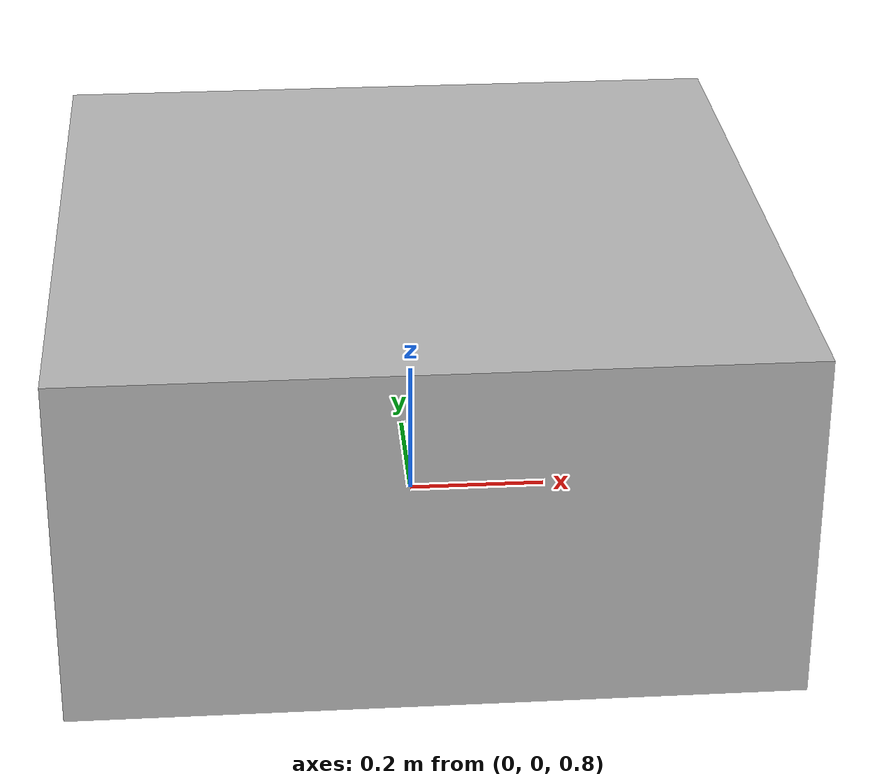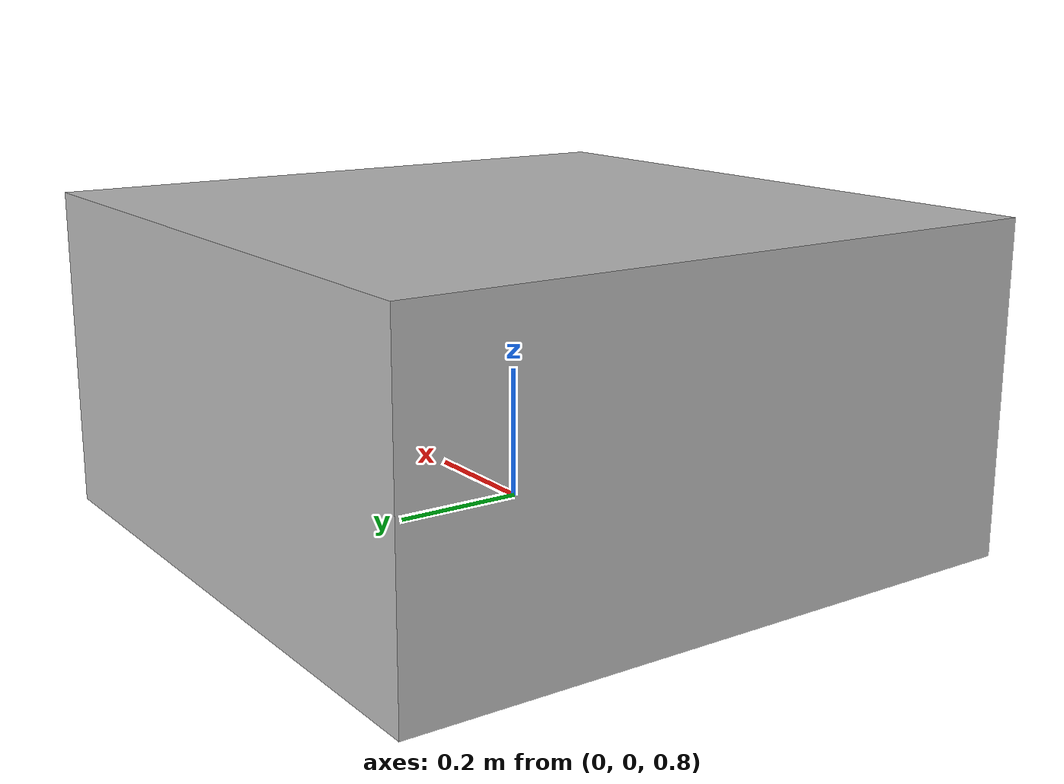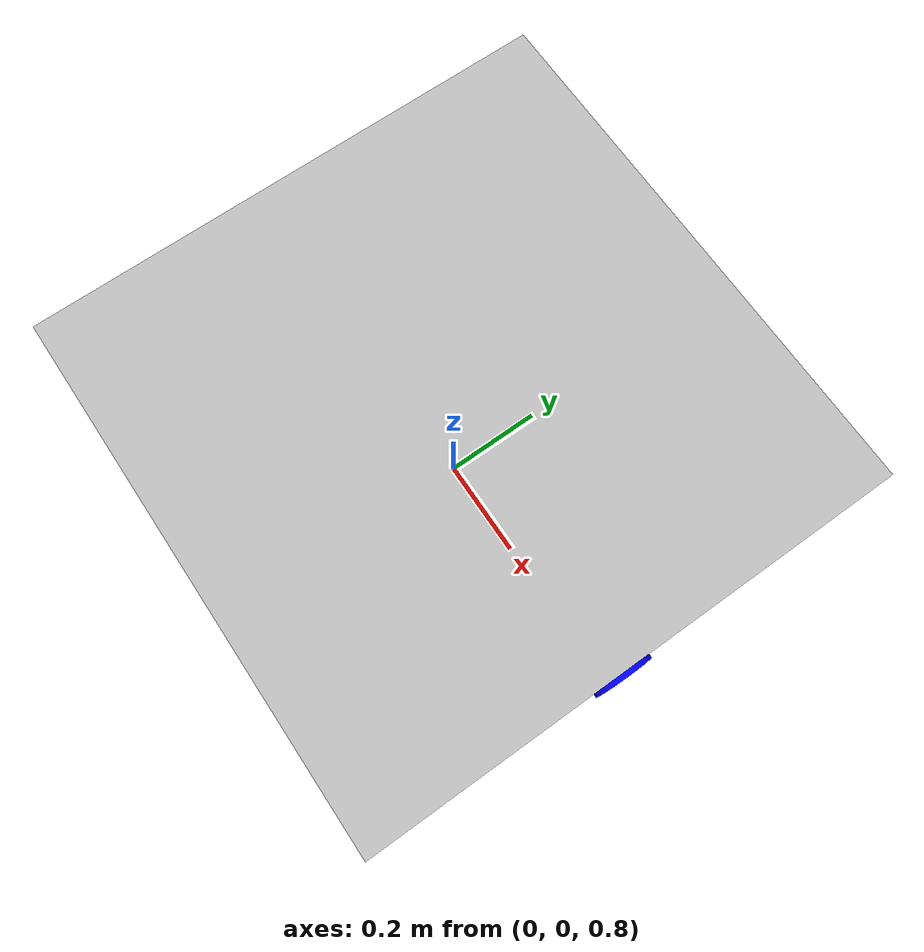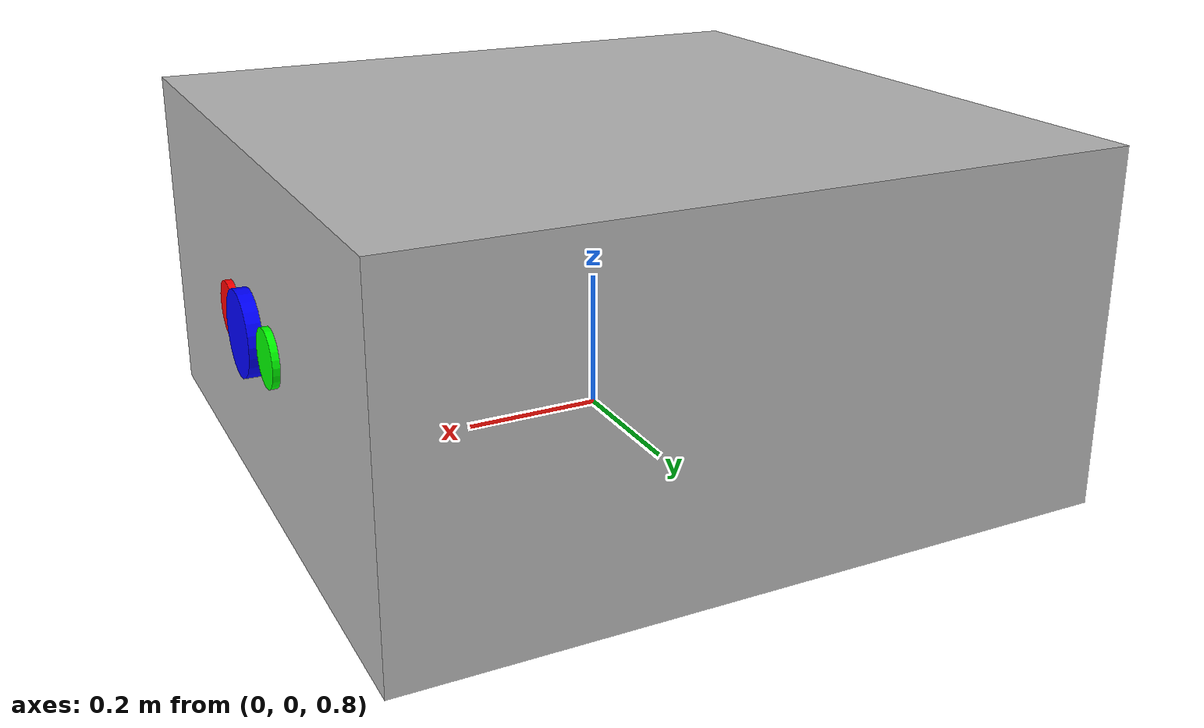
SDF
<?xml version="1.0" ?>
<sdf version="1.6">
  <model name="quadcopter_with_camera">

    <!-- World link -->
    <link name="world"/>

    <!-- Define the box as the main link -->
    <link name="box_link">
      <pose>0 0 1 0 0 0</pose> <!-- Adjust the pose to position the box -->

      <visual name="box_visual">
        <geometry>
          <box>
            <size>1 1 0.5</size> <!-- Define the size of the box -->
          </box>
        </geometry>
      </visual>
      <collision name="box_collision">
        <geometry>
          <box>
            <size>1 1 1</size>
          </box>
        </geometry>
      </collision>

      <!-- Attach the camera sensor to the box -->
      <sensor name="camera" type="camera">
        <pose>0.5 0 0 0 0 0</pose> <!-- Position the camera -->
        <camera>
          <horizontal_fov>1.047</horizontal_fov>
          <image>
            <width>640</width>
            <height>480</height>
            <format>R8G8B8</format>
          </image>
          <clip>
            <near>0.1</near>
            <far>100</far>
          </clip>
        </camera>
        <always_on>1</always_on>
        <update_rate>30</update_rate>
        <visualize>true</visualize>

        <!-- ROS2 Camera Plugin to publish the camera feed -->
        <plugin name="camera_plugin" filename="libgazebo_ros_camera.so">
          <ros>
            <namespace>/quadcopter</namespace>
            <remapping>image_raw:=/camera/image_raw</remapping>
          </ros>
          <camera_name>camera</camera_name>
          <frame_name>box_link</frame_name> <!-- Attach the camera frame to the box link -->
        </plugin>
      </sensor>

      <!-- Add visual for the camera -->
      <visual name="camera_visual">
        <pose>0.5 0 0 0 1.5708 0</pose> <!-- Match camera pose -->
        <geometry>
          <cylinder>
            <radius>0.06</radius>
            <length>0.04</length>
          </cylinder>
        </geometry>
        <material>
          <ambient>0 0 1 1</ambient> <!-- Blue color -->
          <diffuse>0 0 1 1</diffuse>
        </material>
      </visual>

      <!-- Right distance sensor -->
      <sensor name="right_distance_sensor" type="ray">
        <pose>0.5 0.1 0 0 0 0</pose>
        <ray>
          <scan>
            <horizontal>
              <samples>1</samples>
              <resolution>1</resolution>
              <min_angle>0</min_angle>
              <max_angle>0</max_angle>
            </horizontal>
          </scan>
          <range>
            <min>0.1</min>
            <max>10.0</max>
          </range>
        </ray>
        <always_on>1</always_on>
        <update_rate>10</update_rate>
        <plugin name="right_distance_plugin" filename="libgazebo_ros_ray_sensor.so">
          <ros>
            <namespace>/quadcopter</namespace>
            <remapping>out:=/quadcopter/right_distance/out</remapping>
          </ros>
          <output_type>sensor_msgs/PointCloud2</output_type>
          <frameName>right_distance_sensor</frameName>
        </plugin>
      </sensor>

      <!-- Add visual for the right distance sensor -->
      <visual name="right_distance_sensor_visual">
        <pose>0.5 0.1 0 0 1.5708 0</pose>
        <geometry>
          <cylinder>
            <radius>0.04</radius>
            <length>0.02</length>
          </cylinder>
        </geometry>
        <material>
          <ambient>0 1 0 1</ambient> <!-- Green color -->
          <diffuse>0 1 0 1</diffuse>
        </material>
      </visual>

      <!-- Left distance sensor -->
      <sensor name="left_distance_sensor" type="ray">
        <pose>0.5 -0.1 0 0 0 0</pose> <!-- Adjust position as needed -->
        <ray>
          <scan>
            <horizontal>
              <samples>1</samples>
              <resolution>1</resolution>
              <min_angle>0</min_angle>
              <max_angle>0</max_angle>
            </horizontal>
          </scan>
          <range>
            <min>0.1</min>
            <max>10.0</max>
          </range>
        </ray>
        <always_on>1</always_on>
        <update_rate>10</update_rate>
        <plugin name="left_distance_plugin" filename="libgazebo_ros_ray_sensor.so">
          <ros>
            <namespace>/quadcopter</namespace>
            <remapping>out:=/quadcopter/left_distance/out</remapping>
          </ros>
          <output_type>sensor_msgs/PointCloud2</output_type>
          <frameName>left_distance_sensor</frameName>
        </plugin>
      </sensor>

      <!-- Add visual for the left distance sensor -->
      <visual name="left_distance_sensor_visual">
        <pose>0.5 -0.1 0 0 1.5708 0</pose>
        <geometry>
          <cylinder>
            <radius>0.04</radius>
            <length>0.02</length>
          </cylinder>
        </geometry>
        <material>
          <ambient>1 0 0 1</ambient> <!-- Red color -->
          <diffuse>1 0 0 1</diffuse>
        </material>
      </visual>
    </link>

    <!-- Hand of God plugin -->
    <plugin name="hand_of_god" filename="libgazebo_ros_hand_of_god.so">
      <ros>
        <namespace>/quadcopter</namespace>
        <remapping>pose:=/cmd_pose</remapping> <!-- Remap to the desired topic -->
      </ros>
      <link_name>box_link</link_name>
      <reference_frame>world</reference_frame> <!-- Explicitly set the reference frame -->
    </plugin>

  </model>
</sdf>
